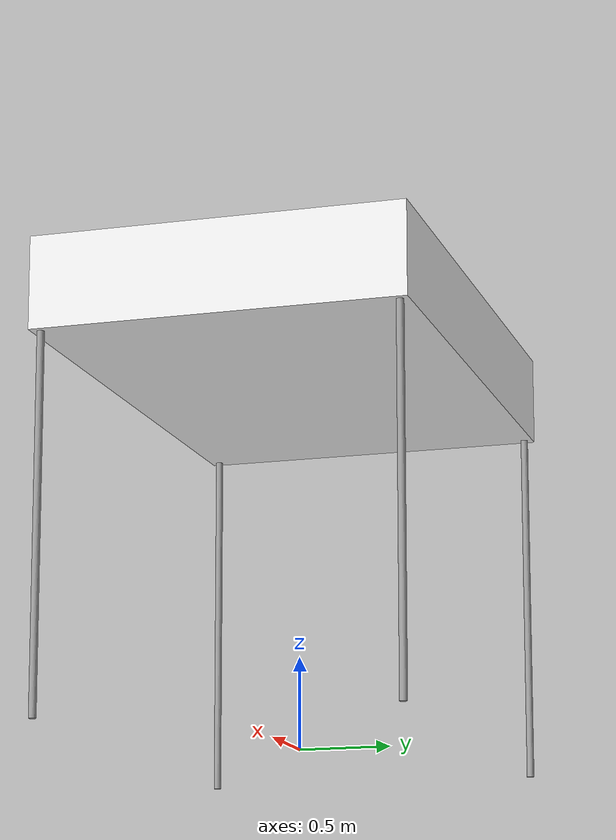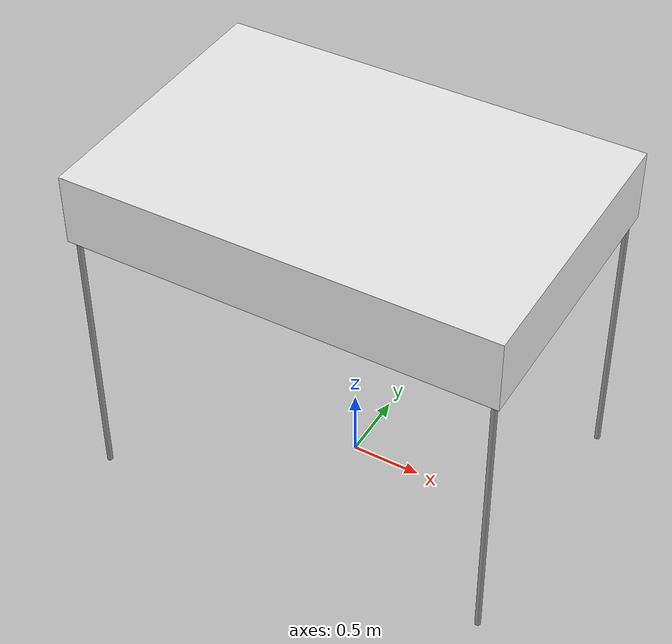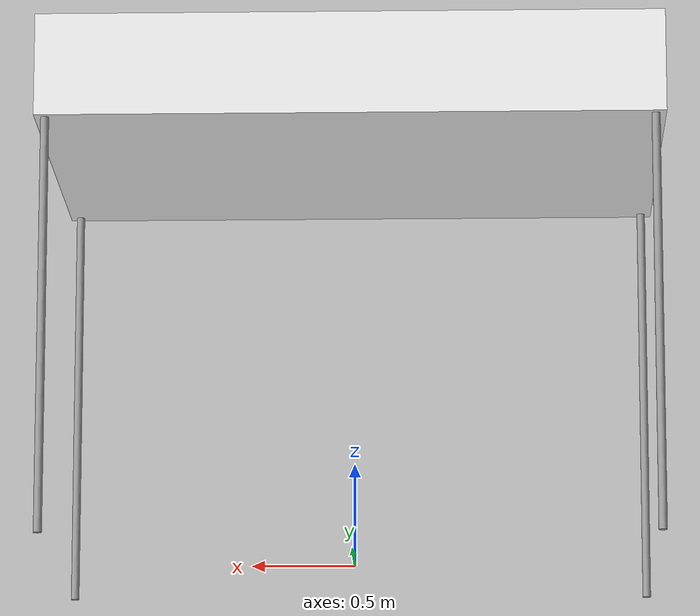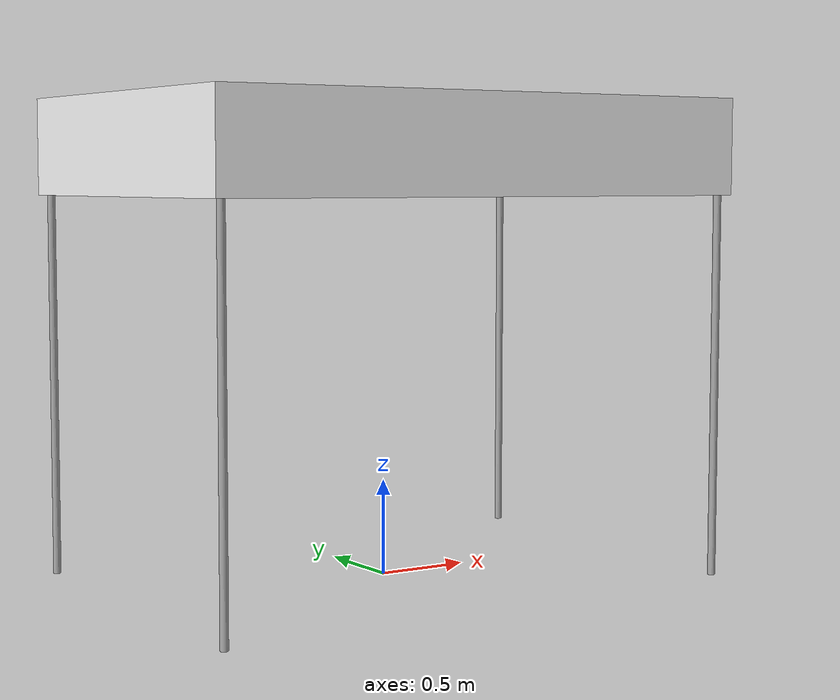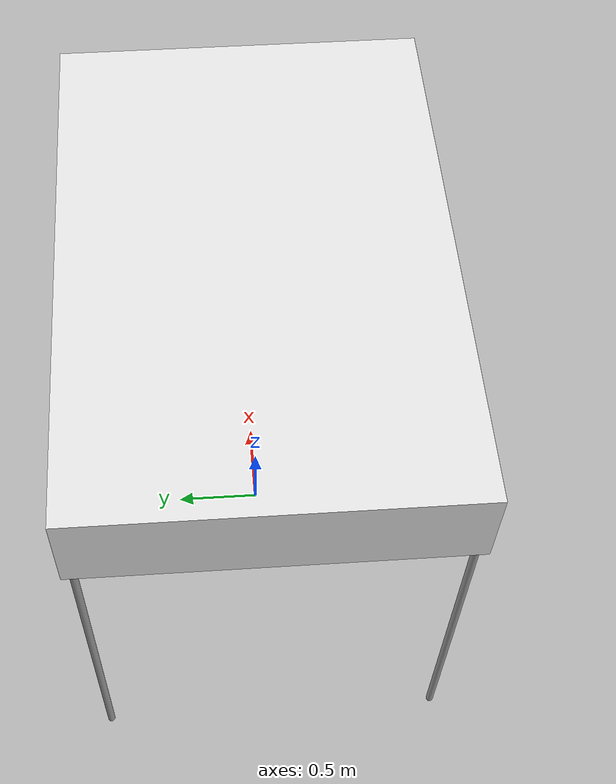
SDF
<?xml version="1.0" ?>
<sdf version="1.6">
  <model name="folding_tent">
    <static>true</static>
    <link name="link">
      <collision name="collision">
        <geometry>
          <box>
            <size>3 2 2.5</size>
          </box>
        </geometry>
      </collision>
      <visual name="leg_1">
        <pose>1.45 0.95 1.0 0 0 0</pose>
        <geometry>
          <cylinder>
            <radius>0.02</radius>
            <length>2.0</length>
          </cylinder>
        </geometry>
        <material>
          <script>
            <uri>file://media/materials/scripts/gazebo.material</uri>
            <name>Gazebo/Grey</name>
          </script>
        </material>
      </visual>
      <visual name="leg_2">
        <pose>-1.45 0.95 1.0 0 0 0</pose>
        <geometry>
          <cylinder>
            <radius>0.02</radius>
            <length>2.0</length>
          </cylinder>
        </geometry>
        <material>
          <script>
            <uri>file://media/materials/scripts/gazebo.material</uri>
            <name>Gazebo/Grey</name>
          </script>
        </material>
      </visual>
      <visual name="leg_3">
        <pose>1.45 -0.95 1.0 0 0 0</pose>
        <geometry>
          <cylinder>
            <radius>0.02</radius>
            <length>2.0</length>
          </cylinder>
        </geometry>
        <material>
          <script>
            <uri>file://media/materials/scripts/gazebo.material</uri>
            <name>Gazebo/Grey</name>
          </script>
        </material>
      </visual>
      <visual name="leg_4">
        <pose>-1.45 -0.95 1.0 0 0 0</pose>
        <geometry>
          <cylinder>
            <radius>0.02</radius>
            <length>2.0</length>
          </cylinder>
        </geometry>
        <material>
          <script>
            <uri>file://media/materials/scripts/gazebo.material</uri>
            <name>Gazebo/Grey</name>
          </script>
        </material>
      </visual>
      <visual name="roof">
        <pose>0 0 2.25 0 0 0</pose>
        <geometry>
          <box>
            <size>3.0 2.0 0.5</size>
          </box>
        </geometry>
        <material>
          <script>
            <uri>file://media/materials/scripts/gazebo.material</uri>
            <name>Gazebo/White</name>
          </script>
        </material>
      </visual>
    </link>
  </model>
</sdf>
